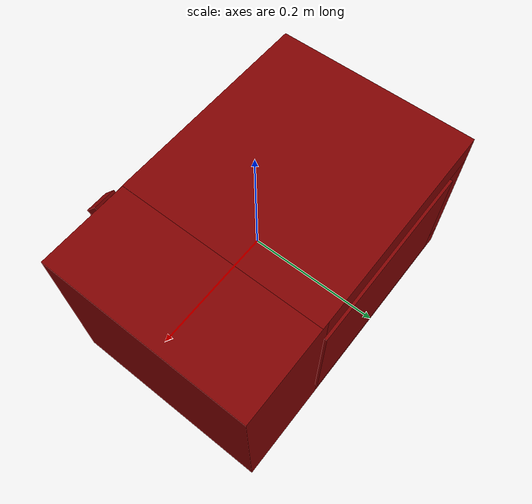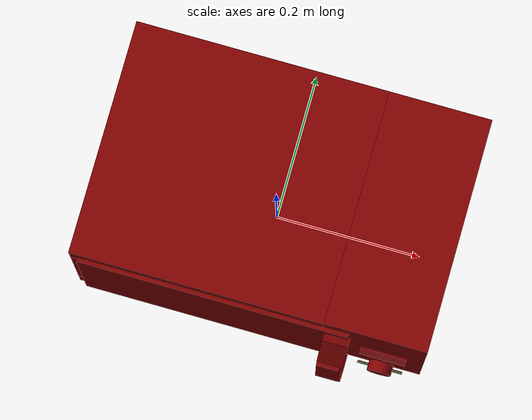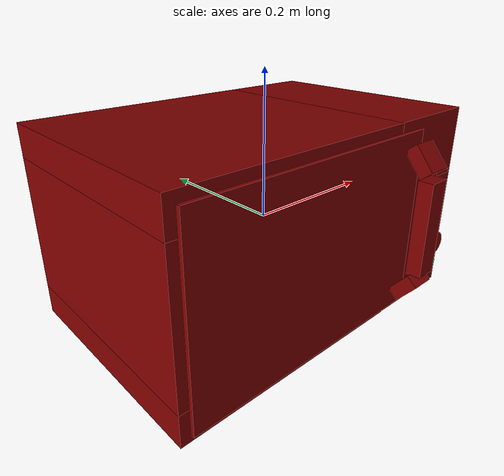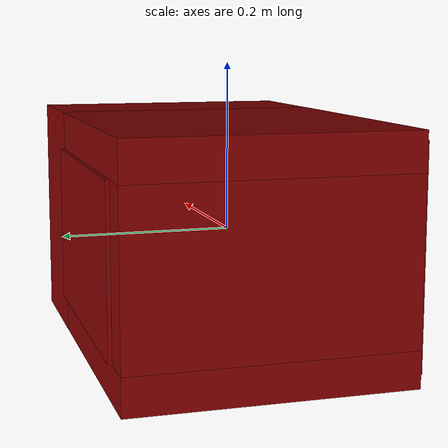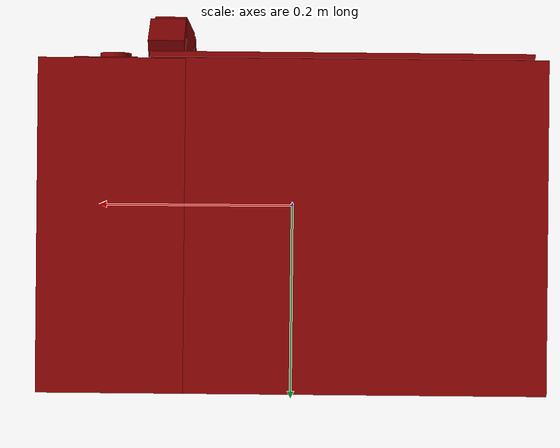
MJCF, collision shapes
<mujoco model="model">
  <compiler angle="radian"/>
  <asset>
    <mesh file="visuals/door.obj" name="door_vis"/>
    <mesh file="visuals/Body001.obj" name="Body001_vis"/>
    <mesh file="visuals/Button001.obj" name="Button001_vis"/>
    <mesh file="visuals/Button002.obj" name="Button002_vis"/>
    <mesh file="visuals/Button003.obj" name="Button003_vis"/>
    <mesh file="visuals/Button004.obj" name="Button004_vis"/>
    <mesh file="visuals/Button005.obj" name="Button005_vis"/>
    <mesh file="visuals/Button006.obj" name="Button006_vis"/>
    <mesh file="visuals/Button007.obj" name="Button007_vis"/>
    <mesh file="visuals/Button008.obj" name="Button008_vis"/>
    <mesh file="visuals/Button009.obj" name="Button009_vis"/>
    <mesh file="visuals/Button010.obj" name="Button010_vis"/>
    <mesh file="visuals/Disc001.obj" name="Disc001_vis"/>
    <mesh file="visuals/Knob001.obj" name="Knob001_vis"/>
    <texture file="visuals/T_BC001.png" name="Body001_material" type="2d"/>
    <material name="Body001_material" rgba="1 1 1 1.0" texture="Body001_material" shininess="0.2512328028678894" specular="0.7"/>
    <texture file="visuals/T_BC001.png" name="door_material" type="2d"/>
    <material name="door_material" rgba="1 1 1 1.0" texture="door_material" shininess="0.2512328028678894" specular="0.3103448502657381"/>
    <texture file="visuals/T_BC001.png" name="Button001_material" type="2d"/>
    <material name="Button001_material" rgba="1 1 1 1.0" texture="Button001_material" shininess="0.2512328028678894" specular="0.3103448502657381"/>
    <texture file="visuals/T_BC001.png" name="Button002_material" type="2d"/>
    <material name="Button002_material" rgba="1 1 1 1.0" texture="Button002_material" shininess="0.2512328028678894" specular="0.3103448502657381"/>
    <texture file="visuals/T_BC001.png" name="Button003_material" type="2d"/>
    <material name="Button003_material" rgba="1 1 1 1.0" texture="Button003_material" shininess="0.2512328028678894" specular="0.3103448502657381"/>
    <texture file="visuals/T_BC001.png" name="Button004_material" type="2d"/>
    <material name="Button004_material" rgba="1 1 1 1.0" texture="Button004_material" shininess="0.2512328028678894" specular="0.3103448502657381"/>
    <texture file="visuals/T_BC001.png" name="Button005_material" type="2d"/>
    <material name="Button005_material" rgba="1 1 1 1.0" texture="Button005_material" shininess="0.2512328028678894" specular="0.3103448502657381"/>
    <texture file="visuals/T_BC001.png" name="Button006_material" type="2d"/>
    <material name="Button006_material" rgba="1 1 1 1.0" texture="Button006_material" shininess="0.2512328028678894" specular="0.3103448502657381"/>
    <texture file="visuals/T_BC001.png" name="Button007_material" type="2d"/>
    <material name="Button007_material" rgba="1 1 1 1.0" texture="Button007_material" shininess="0.2512328028678894" specular="0.3103448502657381"/>
    <texture file="visuals/T_BC001.png" name="Button008_material" type="2d"/>
    <material name="Button008_material" rgba="1 1 1 1.0" texture="Button008_material" shininess="0.2512328028678894" specular="0.3103448502657381"/>
    <texture file="visuals/T_BC001.png" name="Button009_material" type="2d"/>
    <material name="Button009_material" rgba="1 1 1 1.0" texture="Button009_material" shininess="0.2512328028678894" specular="0.3103448502657381"/>
    <texture file="visuals/T_BC001.png" name="Button010_material" type="2d"/>
    <material name="Button010_material" rgba="1 1 1 1.0" texture="Button010_material" shininess="0.2512328028678894" specular="0.3103448502657381"/>
    <texture file="visuals/T_BC001.png" name="Disc001_material" type="2d"/>
    <material name="Disc001_material" rgba="1 1 1 1.0" texture="Disc001_material" shininess="0.2512328028678894" specular="0.3103448502657381"/>
    <texture file="visuals/T_BC001.png" name="Knob001_material" type="2d"/>
    <material name="Knob001_material" rgba="1 1 1 1.0" texture="Knob001_material" shininess="0.2512328028678894" specular="0.3103448502657381"/>
  </asset>
  <default>
    <default class="visual">
      <geom conaffinity="0" contype="0" group="1" type="mesh"/>
    </default>
    <default class="collision">
      <geom group="0" rgba="0.5 0 0 0.5"/>
    </default>
    <default class="spawn">
      <geom group="0" rgba="1 1 1 0.5" contype="0" conaffinity="0"/>
      <site group="0" rgba="1 1 1 0.5"/>
    </default>
    <default class="region">
      <geom group="1" conaffinity="0" contype="0" rgba="0 1 0 0"/>
    </default>
  </default>
  <worldbody>
    <body>
      <body name="object">
        <geom class="collision" type="box" pos="-0.049486346542835236 0.028427844867110252 -0.07678662240505219" size="0.12629246711730957 0.12629246711730957 0.002638384932652116" quat="1.0 0.0 0.0 0.0" name="tray" rgba="0 1 0 0.5"/>
        <geom class="collision" type="box" pos="0.20458970963954926 -0.14931613206863403 -0.09331346303224564" size="0.01564711704850197 0.0002732244902290404 0.0046709501184523106" quat="1.0 0.0 0.0 0.0" name="stop_button" rgba="0.0 0.5 0 0.5"/>
        <geom class="collision" type="box" pos="0.1726444810628891 -0.14947056770324707 -0.09331346303224564" size="0.01564711704850197 0.0002732244902290404 0.0046709501184523106" quat="1.0 0.0 0.0 0.0" name="start_button" rgba="0.0 0.5 0 0.5"/>
        <geom mesh="Body001_vis" type="mesh" solimp="0.998 0.998 0.001" solref="0.001 1" density="100" friction="0.95 0.3 0.1" class="visual" material="Body001_material"/>
        <geom class="collision" type="box" pos="-0.0706014633178711 0.02172013930976391 0.11514736711978912" size="0.17389197647571564 0.16072863340377808 0.022250866517424583" quat="1.0 0.0 0.0 0.0"/>
        <geom class="collision" type="box" pos="-0.0706014633178711 0.02172013930976391 -0.11516252160072327" size="0.17389218509197235 0.1607288420200348 0.021848930045962334" quat="1.0 0.0 0.0 0.0"/>
        <geom class="collision" type="box" pos="-0.0706014633178711 0.02172013930976391 -0.11516252160072327" size="0.17389239370822906 0.1607290506362915 0.021848956122994423" quat="1.0 0.0 0.0 0.0"/>
        <geom class="collision" type="box" pos="-0.2216666340827942 0.02172013930976391 -0.0010122254025191069" size="0.022832298651337624 0.16072925925254822 0.09390518069267273" quat="1.0 0.0 0.0 0.0"/>
        <geom class="collision" type="box" pos="0.16805893182754517 0.022142408415675163 -5.433743353933096e-05" size="0.07626572251319885 0.16030721366405487 0.13742108643054962" quat="1.0 0.0 0.0 0.0"/>
        <geom class="collision" type="box" pos="-0.05244666710495949 0.18277272582054138 -0.0010122254025191069" size="0.14865408837795258 0.003941330127418041 0.09390538930892944" quat="1.0 0.0 0.0 0.0"/>
        <body name="door">
          <joint axis="0.0 0.0 1.0" pos="-0.22993920743465424 -0.14336863160133362 0.0006045997142791748" limited="true" name="microjoint" range="-1.5707963267948966 0.0" type="hinge" damping="1" frictionloss="1" armature=".01" stiffness="0.05"/>
          <geom mesh="door_vis" type="mesh" solimp="0.998 0.998 0.001" solref="0.001 1" density="100" friction="0.95 0.3 0.1" class="visual" material="door_material"/>
          <geom class="collision" type="box" pos="-0.04696047678589821 -0.14351913332939148 -1.321511808782816e-05" size="0.1857776939868927 0.0026499556843191385 0.1252102106809616" quat="1.0 0.0 0.0 0.0"/>
          <geom class="collision" type="box" pos="0.12262088805437088 -0.17583130300045013 0.0031183238606899977" size="0.01563311368227005 0.010494057089090347 0.06579842418432236" quat="1.0 0.0 0.0 0.0" name="door_handle"/>
          <geom class="collision" type="box" pos="0.12413503229618073 -0.16266518831253052 0.09185588359832764" size="0.01756284013390541 0.009676511399447918 0.02001846209168434" quat="0.9437553882598877 -0.3306444585323334 -0.0 0.0"/>
          <geom class="collision" type="box" pos="0.12413503229618073 -0.1639014184474945 -0.0879533439874649" size="0.01756284013390541 0.009676511399447918 0.02001846395432949" quat="0.9395060539245605 0.34253230690956116 0.0 0.0"/>
        </body>
        <body name="Button001">
          <joint axis="0.0 1.0 0.0" pos="0.17272289097309113 -0.14636851847171783 -0.09331563115119934" limited="true" name="Button001_joint" range="0.0 0.0005" type="slide" damping="1" frictionloss="1" armature=".01" stiffness="0.05"/>
          <geom mesh="Button001_vis" type="mesh" solimp="0.998 0.998 0.001" solref="0.001 1" density="100" friction="0.95 0.3 0.1" class="visual" material="Button001_material"/>
          <geom class="collision" type="box" pos="0.1726444810628891 -0.14747585356235504 -0.09331346303224564" size="0.01564711704850197 0.0002732244902290404 0.0046709501184523106" quat="1.0 0.0 0.0 0.0"/>
        </body>
        <body name="Button002">
          <joint axis="0.0 1.0 0.0" pos="0.20481520891189575 -0.14636853337287903 -0.09331563115119934" limited="true" name="Button002_joint" range="0.0 0.0005" type="slide" damping="1" frictionloss="1" armature=".01" stiffness="0.05"/>
          <geom mesh="Button002_vis" type="mesh" solimp="0.998 0.998 0.001" solref="0.001 1" density="100" friction="0.95 0.3 0.1" class="visual" material="Button002_material"/>
          <geom class="collision" type="box" pos="0.20475968718528748 -0.14724159240722656 -0.09331346303224564" size="0.015646740794181824 0.00048112327931448817 0.004208126105368137" quat="1.0 0.0 0.0 0.0"/>
        </body>
        <body name="Button003">
          <joint axis="0.0 1.0 0.0" pos="0.20481525361537933 -0.14636850357055664 -0.0036635547876358032" limited="true" name="Button003_joint" range="0.0 0.0005" type="slide" damping="1" frictionloss="1" armature=".01" stiffness="0.05"/>
          <geom mesh="Button003_vis" type="mesh" solimp="0.998 0.998 0.001" solref="0.001 1" density="100" friction="0.95 0.3 0.1" class="visual" material="Button003_material"/>
          <geom class="collision" type="box" pos="0.20481111109256744 -0.1460135132074356 -0.0036664570216089487" size="0.01564711704850197 0.0015264569083228707 0.002607379574328661" quat="1.0 0.0 0.0 0.0"/>
        </body>
        <body name="Button004">
          <joint axis="0.0 1.0 0.0" pos="0.1727229207754135 -0.14636848866939545 -0.0036635547876358032" limited="true" name="Button004_joint" range="0.0 0.0005" type="slide" damping="1" frictionloss="1" armature=".01" stiffness="0.05"/>
          <geom mesh="Button004_vis" type="mesh" solimp="0.998 0.998 0.001" solref="0.001 1" density="100" friction="0.95 0.3 0.1" class="visual" material="Button004_material"/>
          <geom class="collision" type="box" pos="0.17277765274047852 -0.1460135132074356 -0.0036664570216089487" size="0.01564711704850197 0.0015264569083228707 0.002607375383377075" quat="1.0 0.0 0.0 0.0"/>
        </body>
        <body name="Button005">
          <joint axis="0.0 1.0 0.0" pos="0.1727229207754135 -0.14636848866939545 0.014887303113937378" limited="true" name="Button005_joint" range="0.0 0.0005" type="slide" damping="1" frictionloss="1" armature=".01" stiffness="0.05"/>
          <geom mesh="Button005_vis" type="mesh" solimp="0.998 0.998 0.001" solref="0.001 1" density="100" friction="0.95 0.3 0.1" class="visual" material="Button005_material"/>
          <geom class="collision" type="box" pos="0.17277765274047852 -0.1460135132074356 0.014931773766875267" size="0.01564711704850197 0.0015264569083228707 0.0026073839981108904" quat="1.0 0.0 0.0 0.0"/>
        </body>
        <body name="Button006">
          <joint axis="0.0 1.0 0.0" pos="0.20481525361537933 -0.14636850357055664 0.014887318015098572" limited="true" name="Button006_joint" range="0.0 0.0005" type="slide" damping="1" frictionloss="1" armature=".01" stiffness="0.05"/>
          <geom mesh="Button006_vis" type="mesh" solimp="0.998 0.998 0.001" solref="0.001 1" density="100" friction="0.95 0.3 0.1" class="visual" material="Button006_material"/>
          <geom class="collision" type="box" pos="0.20481111109256744 -0.1460135132074356 0.014931773766875267" size="0.01564711704850197 0.0015264569083228707 0.002607388189062476" quat="1.0 0.0 0.0 0.0"/>
        </body>
        <body name="Button007">
          <joint axis="0.0 1.0 0.0" pos="0.20481525361537933 -0.14636848866939545 0.0337882936000824" limited="true" name="Button007_joint" range="0.0 0.0005" type="slide" damping="1" frictionloss="1" armature=".01" stiffness="0.05"/>
          <geom mesh="Button007_vis" type="mesh" solimp="0.998 0.998 0.001" solref="0.001 1" density="100" friction="0.95 0.3 0.1" class="visual" material="Button007_material"/>
          <geom class="collision" type="box" pos="0.20481111109256744 -0.1460135132074356 0.03377615660429001" size="0.01564711704850197 0.0015264569083228707 0.0026073968037962914" quat="1.0 0.0 0.0 0.0"/>
        </body>
        <body name="Button008">
          <joint axis="0.0 1.0 0.0" pos="0.1727229207754135 -0.14636848866939545 0.0337882936000824" limited="true" name="Button008_joint" range="0.0 0.0005" type="slide" damping="1" frictionloss="1" armature=".01" stiffness="0.05"/>
          <geom mesh="Button008_vis" type="mesh" solimp="0.998 0.998 0.001" solref="0.001 1" density="100" friction="0.95 0.3 0.1" class="visual" material="Button008_material"/>
          <geom class="collision" type="box" pos="0.17277765274047852 -0.1460135132074356 0.03377615660429001" size="0.01564711704850197 0.0015264569083228707 0.0026073926128447056" quat="1.0 0.0 0.0 0.0"/>
        </body>
        <body name="Button009">
          <joint axis="0.0 1.0 0.0" pos="0.1727229207754135 -0.14636848866939545 0.0528620183467865" limited="true" name="Button009_joint" range="0.0 0.0005" type="slide" damping="1" frictionloss="1" armature=".01" stiffness="0.05"/>
          <geom mesh="Button009_vis" type="mesh" solimp="0.998 0.998 0.001" solref="0.001 1" density="100" friction="0.95 0.3 0.1" class="visual" material="Button009_material"/>
          <geom class="collision" type="box" pos="0.17277765274047852 -0.1460135132074356 0.052868325263261795" size="0.01564711704850197 0.0015264569083228707 0.0026074012275785208" quat="1.0 0.0 0.0 0.0"/>
        </body>
        <body name="Button010">
          <joint axis="0.0 1.0 0.0" pos="0.20481525361537933 -0.14636848866939545 0.0528620183467865" limited="true" name="Button010_joint" range="0.0 0.0005" type="slide" damping="1" frictionloss="1" armature=".01" stiffness="0.05"/>
          <geom mesh="Button010_vis" type="mesh" solimp="0.998 0.998 0.001" solref="0.001 1" density="100" friction="0.95 0.3 0.1" class="visual" material="Button010_material"/>
          <geom class="collision" type="box" pos="0.20481111109256744 -0.1460135132074356 0.052868325263261795" size="0.01564711704850197 0.0015264569083228707 0.0026074054185301065" quat="1.0 0.0 0.0 0.0"/>
        </body>
        <body name="Disc001">
          <joint axis="0.0 0.0 -1.0" pos="-0.04954634606838226 0.028565524145960808 -0.08632487058639526" limited="false" name="Disc001_joint" range="0 360" type="hinge" damping="1" frictionloss="1" armature=".01" stiffness="0.05"/>
          <geom mesh="Disc001_vis" type="mesh" solimp="0.998 0.998 0.001" solref="0.001 1" density="100" friction="0.95 0.3 0.1" class="visual" material="Disc001_material"/>
          <geom class="collision" type="cylinder" pos="-0.049486350268125534 0.028427844867110252 -0.08636639267206192" size="0.12629246711730957 0.005255565978586674" quat="1.0 0.0 0.0 0.0"/>
        </body>
        <body name="Knob001">
          <joint axis="0.0 1.0 0.0" pos="0.1896316111087799 -0.1589256376028061 -0.0480036586523056" limited="true" name="Knob001_joint" range="0.0 4.764748857944519" type="hinge" damping="0.05" armature="0.001"/>
          <geom mesh="Knob001_vis" type="mesh" solimp="0.998 0.998 0.001" solref="0.001 1" density="100" friction="0.95 0.3 0.1" class="visual" material="Knob001_material"/>
          <geom class="collision" type="cylinder" pos="0.1894901990890503 -0.15420681238174438 -0.047985028475522995" size="0.016689106822013855 0.007366279140114784" quat="0.7071067094802856 0.7071068286895752 0.0 0.0"/>
        </body>
        <geom class="region" name="reg_main" type="box" pos="3.725290298461914e-09 0.019967705011367798 0.0" size="0.24450001120567322 0.16691771149635315 0.13748079538345337"/>
        <geom class="region" name="reg_int" type="box" pos="-0.05494914576411247 0.016748160123825073 -0.0006182752549648285" size="0.14364071562886238 0.14899000525474548 0.08910958096385002"/>
      </body>
    </body>
  </worldbody>
  <actuator>
    <motor name="microjoint_actuator" joint="microjoint" gear="10"/>
    <motor name="Button001_joint_actuator" joint="Button001_joint" gear="0.5"/>
    <motor name="Button002_joint_actuator" joint="Button002_joint" gear="0.5"/>
    <motor name="Button003_joint_actuator" joint="Button003_joint" gear="0.5"/>
    <motor name="Button004_joint_actuator" joint="Button004_joint" gear="0.5"/>
    <motor name="Button005_joint_actuator" joint="Button005_joint" gear="0.5"/>
    <motor name="Button006_joint_actuator" joint="Button006_joint" gear="0.5"/>
    <motor name="Button007_joint_actuator" joint="Button007_joint" gear="0.5"/>
    <motor name="Button008_joint_actuator" joint="Button008_joint" gear="0.5"/>
    <motor name="Button009_joint_actuator" joint="Button009_joint" gear="0.5"/>
    <motor name="Button010_joint_actuator" joint="Button010_joint" gear="0.5"/>
    <motor name="Disc001_joint_actuator" joint="Disc001_joint" gear="50"/>
    <motor name="Knob001_joint_actuator" joint="Knob001_joint" gear="50"/>
  </actuator>
</mujoco>
